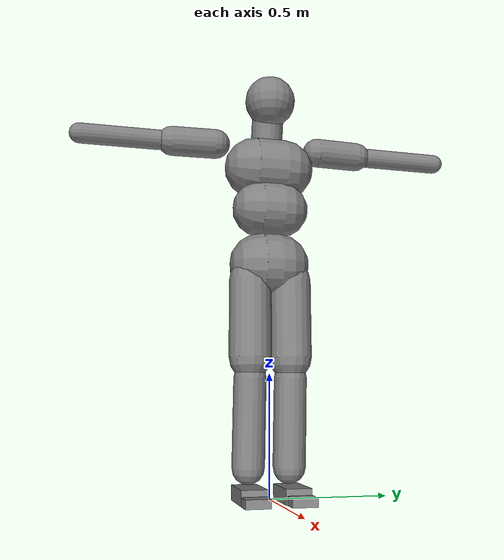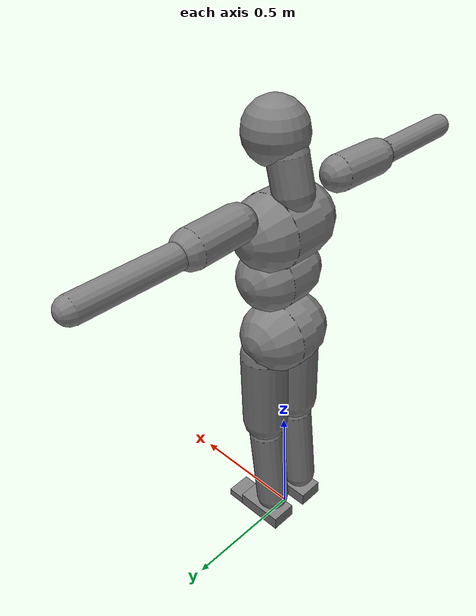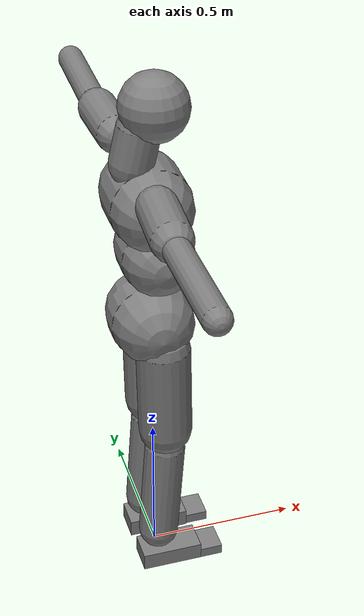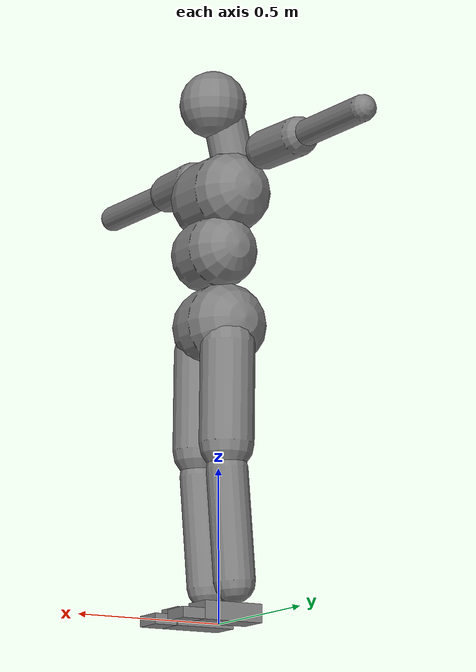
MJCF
<!-- GENERATED by training/tools/build_mjcf.py from SourceArt/test_MATT_Avaturn.glb. Do not edit. -->
<mujoco model="mattbio">
  <compiler angle="degree" autolimits="true" />
  <option timestep="0.005" gravity="0 0 -9.81" integrator="implicitfast" solver="Newton" iterations="20" cone="pyramidal" jacobian="auto">
    <flag multiccd="disable" />
  </option>
  <worldbody>
    <body name="pelvis" pos="0.014059 0 0.966775">
      <inertial pos="-0.01696645 0 -0.003757688" quat="0.7071068 -0.7071068 0 0" mass="8.937766" diaginertia="0.0907144 0.0907144 0.07049761" />
      <freejoint name="root" />
      <geom name="pelvis_geom0" type="capsule" size="0.1357963 0.03473648" contype="256" conaffinity="256" condim="3" friction="1 0.005 0.0001" pos="-0.01696645 0 -0.003757688" quat="0.7071068 -0.7071068 0 0" />
      <body name="torso" pos="-0.000796 0 0.095775">
        <inertial pos="0.003384799 0 0.1412323" quat="0.7071068 -0.7071068 0 0" mass="13.05674" diaginertia="0.1165244 0.1165244 0.08048442" />
        <joint name="abdomen_flex" type="hinge" pos="0 0 0" axis="0 1 0" range="-30 60" armature="0.02" />
        <joint name="abdomen_lat" type="hinge" pos="0 0 0" axis="1 0 0" range="-35 35" armature="0.02" />
        <joint name="abdomen_twist" type="hinge" pos="0 0 0" axis="0 0 1" range="-45 45" armature="0.02" />
        <geom name="torso_geom0" type="capsule" size="0.1189253 0.04429121" contype="256" conaffinity="256" condim="3" friction="1 0.005 0.0001" pos="0.003384799 0 0.1412323" quat="0.7071068 -0.7071068 0 0" />
        <body name="chest" pos="-0.016728 0 0.279754">
          <inertial pos="-0.003824043 0 0.05326067" quat="0.7071068 -0.7071068 0 0" mass="12.76681" diaginertia="0.157376 0.157376 0.09756839" />
          <geom name="chest_geom0" type="capsule" size="0.1315126 0.06314432" contype="256" conaffinity="256" condim="3" friction="1 0.005 0.0001" pos="-0.003824043 0 0.05326067" quat="0.7071068 -0.7071068 0 0" />
          <body name="head" pos="-0.048542 0 0.181344">
            <inertial pos="0.05070428 0 0.1332104" quat="0.6920062 0.1453527 0.1453527 0.6920062" mass="5.548613" diaginertia="0.0503217 0.05005417 0.02171975" />
            <geom name="head_geom0" type="capsule" size="0.06994246 0.0600033" contype="256" conaffinity="256" condim="3" friction="1 0.005 0.0001" pos="0.013404 0 0.058487" quat="0.9936623 0 0.1124062 0" />
            <geom name="head_geom1" type="sphere" size="0.1098854" contype="256" conaffinity="256" condim="3" friction="1 0.005 0.0001" pos="0.07270066 0 0.1772756" />
          </body>
          <body name="upper_arm_l" pos="-0.033514 0.201796 0.161482">
            <inertial pos="-0.007092 0.126 0.00073" quat="0.7091489 -0.7039445 -0.03962202 0" mass="2.169458" diaginertia="0.01610463 0.01610463 0.004156322" />
            <joint name="shoulder_elev_l" type="hinge" pos="0 0 0" axis="1 0 0" range="-95 80" armature="0.01" />
            <joint name="shoulder_flex_l" type="hinge" pos="0 0 0" axis="0 0 -1" range="-60 170" armature="0.01" />
            <joint name="shoulder_twist_l" type="hinge" pos="0 0 0" axis="0 1 0" range="-80 80" armature="0.01" />
            <geom name="upper_arm_l_geom0" type="capsule" size="0.06392297 0.09424006" contype="256" conaffinity="256" condim="3" friction="1 0.005 0.0001" pos="-0.007092 0.126 0.00073" quat="0.7091489 -0.7039445 -0.03962202 0" />
            <body name="forearm_l" pos="-0.014184 0.252 0.00146">
              <inertial pos="0.0027005 0.1902425 -0.00161" quat="0.7041088 -0.7100206 0.01007877 0" mass="1.789553" diaginertia="0.02422419 0.02422419 0.001594476" />
              <joint name="elbow_l" type="hinge" pos="0 0 0" axis="0 0 -1" range="0 145" armature="0.01" />
              <geom name="forearm_l_geom0" type="capsule" size="0.04283781 0.1688496" contype="256" conaffinity="256" condim="3" friction="1 0.005 0.0001" pos="0.0027005 0.1902425 -0.00161" quat="0.7041088 -0.7100206 0.01007877 0" />
            </body>
          </body>
          <body name="upper_arm_r" pos="-0.033514 -0.201796 0.161482">
            <inertial pos="-0.007092 -0.126 0.00073" quat="0.7091489 0.7039445 -0.03962202 0" mass="2.169458" diaginertia="0.01610463 0.01610463 0.004156322" />
            <joint name="shoulder_elev_r" type="hinge" pos="0 0 0" axis="-1 0 0" range="-95 80" armature="0.01" />
            <joint name="shoulder_flex_r" type="hinge" pos="0 0 0" axis="0 0 1" range="-60 170" armature="0.01" />
            <joint name="shoulder_twist_r" type="hinge" pos="0 0 0" axis="0 1 0" range="-80 80" armature="0.01" />
            <geom name="upper_arm_r_geom0" type="capsule" size="0.06392297 0.09424006" contype="256" conaffinity="256" condim="3" friction="1 0.005 0.0001" pos="-0.007092 -0.126 0.00073" quat="0.7091489 0.7039445 -0.03962202 0" />
            <body name="forearm_r" pos="-0.014184 -0.252 0.00146">
              <inertial pos="0.0027005 -0.1902425 -0.00161" quat="0.7041088 0.7100206 0.01007877 0" mass="1.789553" diaginertia="0.02422419 0.02422419 0.001594476" />
              <joint name="elbow_r" type="hinge" pos="0 0 0" axis="0 0 1" range="0 145" armature="0.01" />
              <geom name="forearm_r_geom0" type="capsule" size="0.04283781 0.1688496" contype="256" conaffinity="256" condim="3" friction="1 0.005 0.0001" pos="0.0027005 -0.1902425 -0.00161" quat="0.7041088 0.7100206 0.01007877 0" />
            </body>
          </body>
        </body>
      </body>
      <body name="thigh_l" pos="0.000827 0.085706 -0.03016">
        <inertial pos="0.002864 0 -0.207727" quat="0.006893172 0 0.9999762 0" mass="11.32717" diaginertia="0.2130858 0.2130858 0.04235914" />
        <joint name="hip_flex_l" type="hinge" pos="0 0 0" axis="0 -1 0" range="-30 120" armature="0.02" />
        <joint name="hip_abd_l" type="hinge" pos="0 0 0" axis="1 0 0" range="-30 45" armature="0.02" />
        <joint name="hip_rot_l" type="hinge" pos="0 0 0" axis="0 0 1" range="-40 40" armature="0.02" />
        <geom name="thigh_l_geom0" type="capsule" size="0.08888116 0.1633062" contype="256" conaffinity="256" condim="3" friction="1 0.005 0.0001" pos="0.002864 0 -0.207727" quat="0.006893172 0 0.9999762 0" />
        <body name="shin_l" pos="0.005728 0 -0.415454">
          <inertial pos="-0.0159655 0 -0.214853" quat="0.03707781 0 -0.9993124 0" mass="3.459135" diaginertia="0.06386931 0.06386931 0.007533594" />
          <joint name="knee_l" type="hinge" pos="0 0 0" axis="0 1 0" range="0 150" armature="0.02" />
          <geom name="shin_l_geom0" type="capsule" size="0.06734565 0.1817725" contype="256" conaffinity="256" condim="3" friction="1 0.005 0.0001" pos="-0.0159655 0 -0.214853" quat="0.03707781 0 -0.9993124 0" />
          <body name="foot_l" pos="-0.031931 0 -0.429706">
            <inertial pos="0.03774256 0.002908948 -0.06798844" quat="1 0 0 0" mass="0.8497876" diaginertia="0.00103675 0.003237029 0.003763906" />
            <joint name="ankle_dorsi_l" type="hinge" pos="0 0 0" axis="0 -1 0" range="-50 25" armature="0.01" />
            <joint name="ankle_inv_l" type="hinge" pos="0 0 0" axis="-1 0 0" range="-20 30" armature="0.01" />
            <geom name="foot_l_geom0" type="box" size="0.1026044 0.05253602 0.03" contype="256" conaffinity="256" condim="3" friction="1 0.005 0.0001" pos="0.03774256 0.002908948 -0.06798844" />
            <body name="toe_l" pos="0.140347 0 -0.07597">
              <inertial pos="0.03863281 0.004919875 -0.004518435" quat="1 0 0 0" mass="0.2499375" diaginertia="0.0002352078 0.0001498579 0.0003340368" />
              <joint name="toe_l" type="hinge" pos="0 0 0" axis="0 -1 0" range="-30 60" stiffness="20" damping="1" armature="0.005" />
              <geom name="toe_l_geom0" type="box" size="0.03863281 0.05016921 0.0175" contype="256" conaffinity="256" condim="3" friction="1 0.005 0.0001" pos="0.03863281 0.004919875 -0.004518435" />
            </body>
          </body>
        </body>
      </body>
      <body name="thigh_r" pos="0.000827 -0.085706 -0.03016">
        <inertial pos="0.002864 0 -0.207727" quat="0.006893172 0 0.9999762 0" mass="11.32717" diaginertia="0.2130858 0.2130858 0.04235914" />
        <joint name="hip_flex_r" type="hinge" pos="0 0 0" axis="0 -1 0" range="-30 120" armature="0.02" />
        <joint name="hip_abd_r" type="hinge" pos="0 0 0" axis="-1 0 0" range="-30 45" armature="0.02" />
        <joint name="hip_rot_r" type="hinge" pos="0 0 0" axis="0 0 -1" range="-40 40" armature="0.02" />
        <geom name="thigh_r_geom0" type="capsule" size="0.08888116 0.1633062" contype="256" conaffinity="256" condim="3" friction="1 0.005 0.0001" pos="0.002864 0 -0.207727" quat="0.006893172 0 0.9999762 0" />
        <body name="shin_r" pos="0.005728 0 -0.415454">
          <inertial pos="-0.0159655 0 -0.214853" quat="0.03707781 0 -0.9993124 0" mass="3.459135" diaginertia="0.06386931 0.06386931 0.007533594" />
          <joint name="knee_r" type="hinge" pos="0 0 0" axis="0 1 0" range="0 150" armature="0.02" />
          <geom name="shin_r_geom0" type="capsule" size="0.06734565 0.1817725" contype="256" conaffinity="256" condim="3" friction="1 0.005 0.0001" pos="-0.0159655 0 -0.214853" quat="0.03707781 0 -0.9993124 0" />
          <body name="foot_r" pos="-0.031931 0 -0.429706">
            <inertial pos="0.03774256 -0.002908948 -0.06798844" quat="1 0 0 0" mass="0.8497876" diaginertia="0.00103675 0.003237029 0.003763906" />
            <joint name="ankle_dorsi_r" type="hinge" pos="0 0 0" axis="0 -1 0" range="-50 25" armature="0.01" />
            <joint name="ankle_inv_r" type="hinge" pos="0 0 0" axis="1 0 0" range="-20 30" armature="0.01" />
            <geom name="foot_r_geom0" type="box" size="0.1026044 0.05253602 0.03" contype="256" conaffinity="256" condim="3" friction="1 0.005 0.0001" pos="0.03774256 -0.002908948 -0.06798844" />
            <body name="toe_r" pos="0.140343 0 -0.075843">
              <inertial pos="0.03863281 -0.004919875 -0.004518435" quat="1 0 0 0" mass="0.2499375" diaginertia="0.0002352078 0.0001498579 0.0003340368" />
              <joint name="toe_r" type="hinge" pos="0 0 0" axis="0 -1 0" range="-30 60" stiffness="20" damping="1" armature="0.005" />
              <geom name="toe_r_geom0" type="box" size="0.03863281 0.05016921 0.0175" contype="256" conaffinity="256" condim="3" friction="1 0.005 0.0001" pos="0.03863681 -0.004919875 -0.004645435" />
            </body>
          </body>
        </body>
      </body>
    </body>
  </worldbody>
  <contact>
    <exclude body1="thigh_l" body2="thigh_r" />
  </contact>
  <actuator>
    <position name="abdomen_flex" joint="abdomen_flex" kp="300" kv="30" forcelimited="true" forcerange="-200 180" />
    <position name="abdomen_lat" joint="abdomen_lat" kp="300" kv="30" forcelimited="true" forcerange="-150 150" />
    <position name="abdomen_twist" joint="abdomen_twist" kp="300" kv="30" forcelimited="true" forcerange="-80 80" />
    <position name="shoulder_elev_l" joint="shoulder_elev_l" kp="60" kv="6" forcelimited="true" forcerange="-80 70" />
    <position name="shoulder_flex_l" joint="shoulder_flex_l" kp="60" kv="6" forcelimited="true" forcerange="-80 70" />
    <position name="shoulder_twist_l" joint="shoulder_twist_l" kp="60" kv="6" forcelimited="true" forcerange="-50 50" />
    <position name="elbow_l" joint="elbow_l" kp="50" kv="5" forcelimited="true" forcerange="-55 70" />
    <position name="shoulder_elev_r" joint="shoulder_elev_r" kp="60" kv="6" forcelimited="true" forcerange="-80 70" />
    <position name="shoulder_flex_r" joint="shoulder_flex_r" kp="60" kv="6" forcelimited="true" forcerange="-80 70" />
    <position name="shoulder_twist_r" joint="shoulder_twist_r" kp="60" kv="6" forcelimited="true" forcerange="-50 50" />
    <position name="elbow_r" joint="elbow_r" kp="50" kv="5" forcelimited="true" forcerange="-55 70" />
    <position name="hip_flex_l" joint="hip_flex_l" kp="300" kv="30" forcelimited="true" forcerange="-280 200" />
    <position name="hip_abd_l" joint="hip_abd_l" kp="300" kv="30" forcelimited="true" forcerange="-150 150" />
    <position name="hip_rot_l" joint="hip_rot_l" kp="300" kv="30" forcelimited="true" forcerange="-80 80" />
    <position name="knee_l" joint="knee_l" kp="300" kv="30" forcelimited="true" forcerange="-280 150" />
    <position name="ankle_dorsi_l" joint="ankle_dorsi_l" kp="200" kv="20" forcelimited="true" forcerange="-220 60" />
    <position name="ankle_inv_l" joint="ankle_inv_l" kp="200" kv="20" forcelimited="true" forcerange="-45 60" />
    <position name="hip_flex_r" joint="hip_flex_r" kp="300" kv="30" forcelimited="true" forcerange="-280 200" />
    <position name="hip_abd_r" joint="hip_abd_r" kp="300" kv="30" forcelimited="true" forcerange="-150 150" />
    <position name="hip_rot_r" joint="hip_rot_r" kp="300" kv="30" forcelimited="true" forcerange="-80 80" />
    <position name="knee_r" joint="knee_r" kp="300" kv="30" forcelimited="true" forcerange="-280 150" />
    <position name="ankle_dorsi_r" joint="ankle_dorsi_r" kp="200" kv="20" forcelimited="true" forcerange="-220 60" />
    <position name="ankle_inv_r" joint="ankle_inv_r" kp="200" kv="20" forcelimited="true" forcerange="-45 60" />
  </actuator>
</mujoco>
